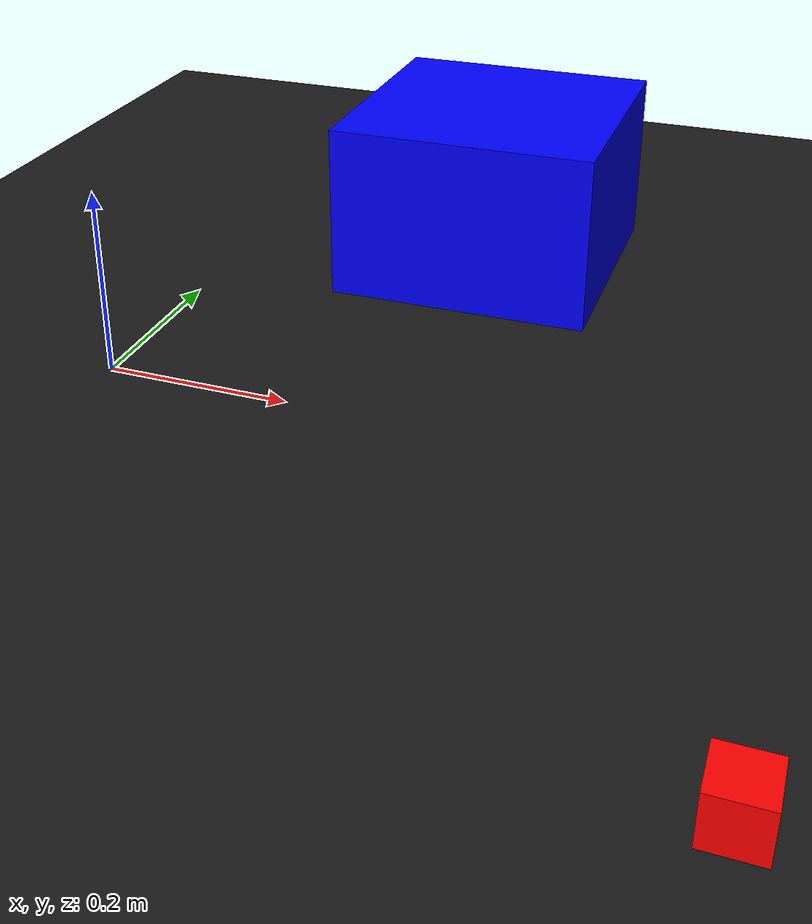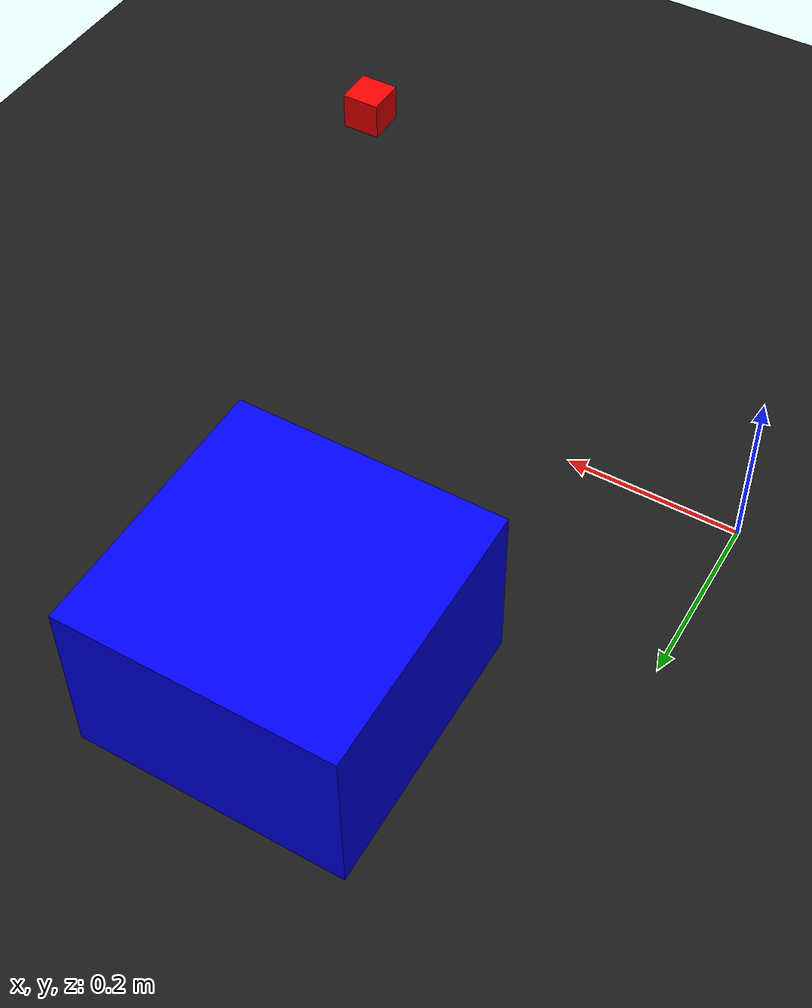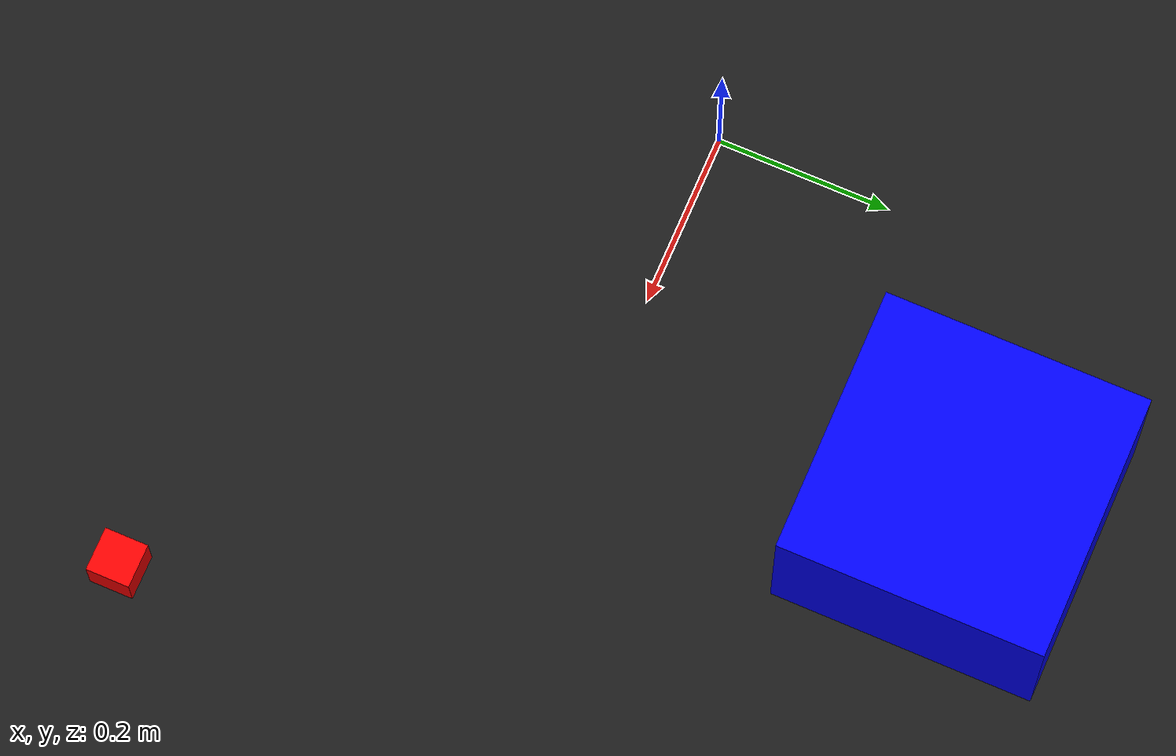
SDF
<?xml version="1.0" ?>
<sdf version="1.10">
  <world name="gp7_world">

    <!-- Simple directional light instead of model://sun -->
    <light name="sun" type="directional">
      <pose>0 0 10 0 0 0</pose>
      <diffuse>1 1 1 1</diffuse>
      <specular>0.1 0.1 0.1 1</specular>
      <attenuation>
        <range>1000</range>
        <constant>0.9</constant>
        <linear>0.01</linear>
        <quadratic>0.001</quadratic>
      </attenuation>
      <direction>-0.5 0.5 -1</direction>
      <cast_shadows>true</cast_shadows>
    </light>

    <!-- Simple ground plane instead of model://ground_plane -->
    <model name="ground_plane">
      <static>true</static>
      <pose>0 0 0 0 0 0</pose>
      <link name="link">
        <collision name="collision">
          <geometry>
            <box>
              <size>10 10 0.001</size>
            </box>
          </geometry>
        </collision>
        <visual name="visual">
          <geometry>
            <box>
              <size>10 10 0.001</size>
            </box>
          </geometry>
          <material>
            <ambient>0.1 0.1 0.1 1.0</ambient>
            <diffuse>0.1 0.1 0.1 1.0</diffuse>
          </material>
        </visual>
      </link>
    </model>

    <!-- Box A: 0.3 x 0.3 x 0.2 m at (0.3, 0.4, 0) -->
    <!-- z = 0.1 (half of 0.2) so it sits on ground -->
    <model name="box_A">
      <pose>0.3 0.4 0.1 0 0 0</pose>
      <link name="link">
        <inertial>
          <mass>1.0</mass>
          <inertia>
            <ixx>0.01</ixx><iyy>0.01</iyy><izz>0.01</izz>
            <ixy>0.0</ixy><ixz>0.0</ixz><iyz>0.0</iyz>
          </inertia>
        </inertial>
        <collision name="collision">
          <geometry>
            <box>
              <size>0.3 0.3 0.2</size>
            </box>
          </geometry>
        </collision>
        <visual name="visual">
          <geometry>
            <box>
              <size>0.3 0.3 0.2</size>
            </box>
          </geometry>
          <material>
            <ambient>0.0 0.0 1.0 1.0</ambient>
            <diffuse>0.0 0.0 1.0 1.0</diffuse>
          </material>
        </visual>
      </link>
    </model>

    <!-- Box B: 0.05 x 0.05 x 0.05 m at (0.7, -0.4, 0) -->
    <!-- z = 0.025 (half of 0.05) so it sits on ground -->
    <model name="box_B">
      <pose>0.7 -0.4 0.025 0 0 0</pose>
      <link name="link">
        <inertial>
          <mass>0.1</mass>
          <inertia>
            <ixx>0.001</ixx><iyy>0.001</iyy><izz>0.001</izz>
            <ixy>0.0</ixy><ixz>0.0</ixz><iyz>0.0</iyz>
          </inertia>
        </inertial>
        <collision name="collision">
          <geometry>
            <box>
              <size>0.05 0.05 0.05</size>
            </box>
          </geometry>
        </collision>
        <visual name="visual">
          <geometry>
            <box>
              <size>0.05 0.05 0.05</size>
            </box>
          </geometry>
          <material>
            <ambient>1.0 0.0 0.0 1.0</ambient>
            <diffuse>1.0 0.0 0.0 1.0</diffuse>
          </material>
        </visual>
      </link>
    </model>

  </world>
</sdf>
